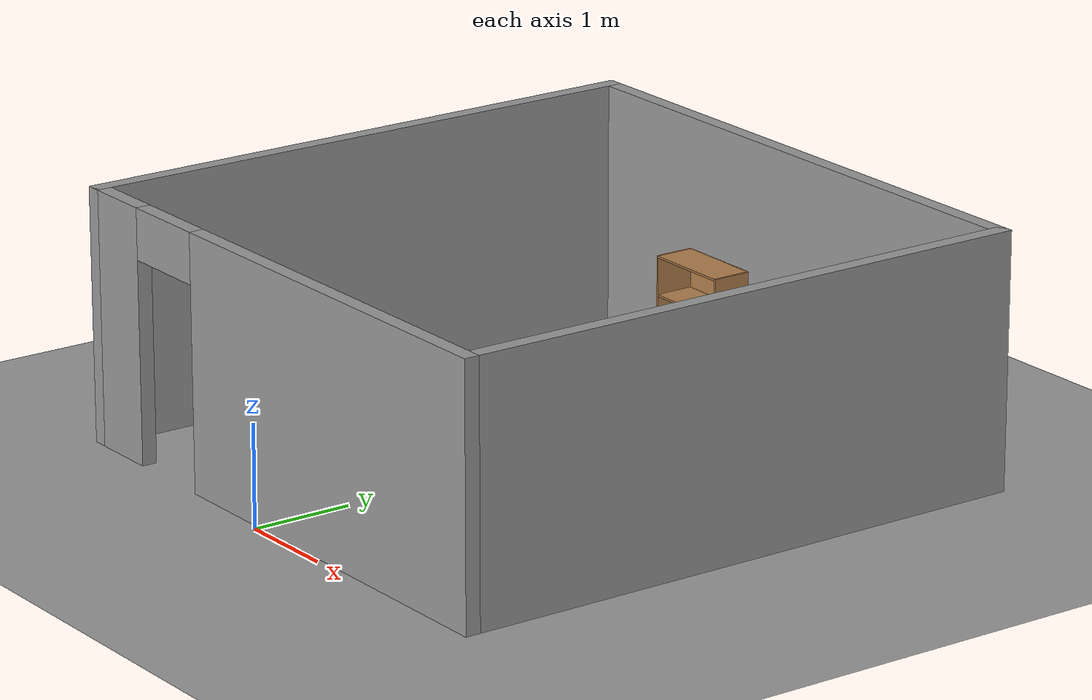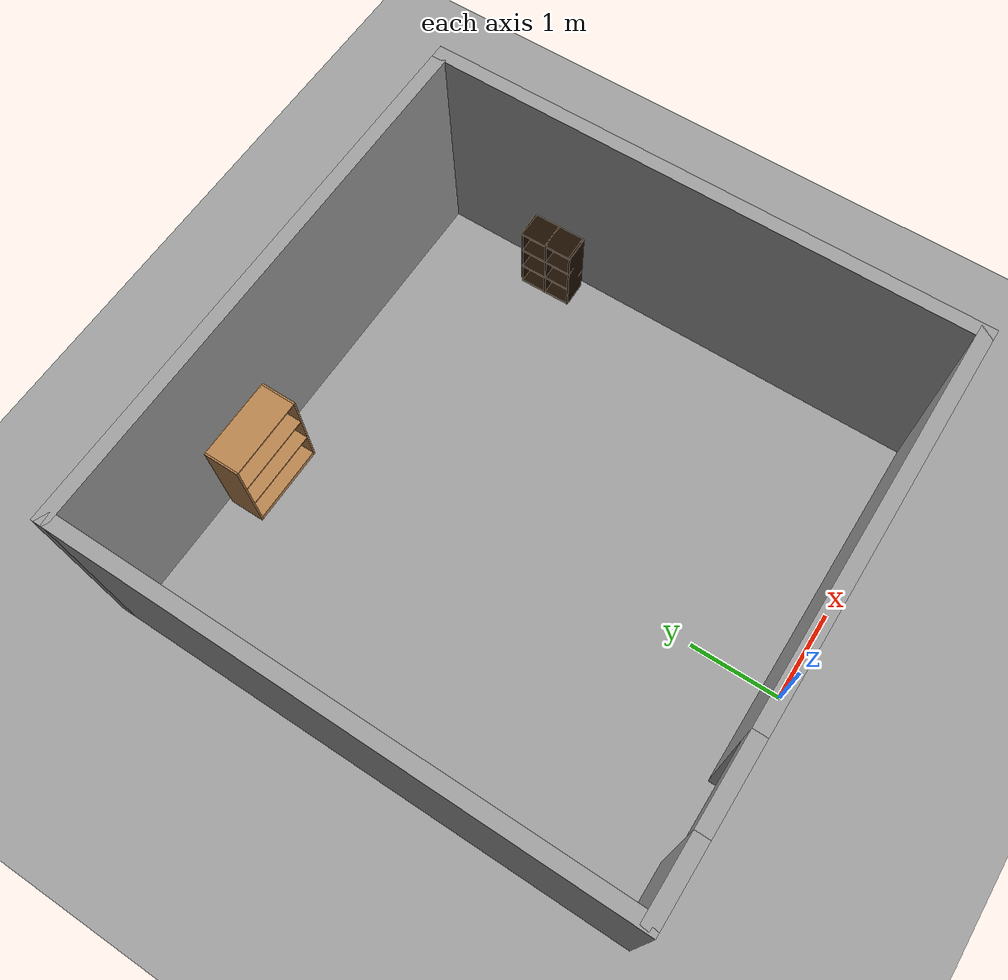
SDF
<sdf version="1.6">
 <world name="default">
  <light name="sun" type="directional">
   <pose>0 0 10 0 -0 0</pose>
   <diffuse>0.8 0.8 0.8 1</diffuse>
   <specular>0.2 0.2 0.2 1</specular>
   <attenuation>
    <range>1000</range>
    <constant>0.9</constant>
    <linear>0.01</linear>
    <quadratic>0.001</quadratic>
   </attenuation>
   <direction>0.5 0.1 -0.9</direction>
  </light>
  <scene><ambient>0.4 0.4 0.4 1</ambient><background>0.7 0.7 0.7 1</background><shadows>1</shadows></scene>
  <physics name="default_physics" default="0" type="ode">
   <max_step_size>0.01</max_step_size>
   <real_time_factor>1</real_time_factor>
   <real_time_update_rate>100</real_time_update_rate>
  </physics>
  <model name="bookshelf">
   <static>1</static>
   <link name="link">
    <inertial><mass>1</mass></inertial>
    <collision name="back">
     <pose>0 0.005 0.6 0 -0 0</pose>
     <geometry><box><size>0.9 0.01 1.2</size></box></geometry>
    </collision>
    <visual name="visual1">
     <pose>0 0.005 0.6 0 -0 0</pose>
     <geometry><box><size>0.9 0.01 1.2</size></box></geometry>
     <material>
      <script><uri>file://media/materials/scripts/gazebo.material</uri><name>Gazebo/Wood</name></script>
     </material>
    </visual>
    <collision name="left_side">
     <pose>0.45 -0.195 0.6 0 -0 0</pose>
     <geometry><box><size>0.02 0.4 1.2</size></box></geometry>
    </collision>
    <visual name="visual2">
     <pose>0.45 -0.195 0.6 0 -0 0</pose>
     <geometry><box><size>0.02 0.4 1.2</size></box></geometry>
     <material>
      <script><uri>file://media/materials/scripts/gazebo.material</uri><name>Gazebo/Wood</name></script>
     </material>
    </visual>
    <collision name="right_side">
     <pose>-0.45 -0.195 0.6 0 -0 0</pose>
     <geometry><box><size>0.02 0.4 1.2</size></box></geometry>
    </collision>
    <visual name="visual3">
     <pose>-0.45 -0.195 0.6 0 -0 0</pose>
     <geometry><box><size>0.02 0.4 1.2</size></box></geometry>
     <material>
      <script><uri>file://media/materials/scripts/gazebo.material</uri><name>Gazebo/Wood</name></script>
     </material>
    </visual>
    <collision name="bottom">
     <pose>0 -0.195 0.03 0 -0 0</pose>
     <geometry><box><size>0.88 0.4 0.06</size></box></geometry>
    </collision>
    <visual name="visual4">
     <pose>0 -0.195 0.03 0 -0 0</pose>
     <geometry><box><size>0.88 0.4 0.06</size></box></geometry>
     <material>
      <script><uri>file://media/materials/scripts/gazebo.material</uri><name>Gazebo/Wood</name></script>
     </material>
    </visual>
    <collision name="top">
     <pose>0 -0.195 1.19 0 -0 0</pose>
     <geometry><box><size>0.88 0.4 0.02</size></box></geometry>
    </collision>
    <visual name="visual5">
     <pose>0 -0.195 1.19 0 -0 0</pose>
     <geometry><box><size>0.88 0.4 0.02</size></box></geometry>
     <material>
      <script><uri>file://media/materials/scripts/gazebo.material</uri><name>Gazebo/Wood</name></script>
     </material>
    </visual>
    <collision name="low_shelf">
     <pose>0 -0.195 0.43 0 -0 0</pose>
     <geometry><box><size>0.88 0.4 0.02</size></box></geometry>
    </collision>
    <visual name="visual6">
     <pose>0 -0.195 0.43 0 -0 0</pose>
     <geometry><box><size>0.88 0.4 0.02</size></box></geometry>
     <material>
      <script><uri>file://media/materials/scripts/gazebo.material</uri><name>Gazebo/Wood</name></script>
     </material>
    </visual>
    <collision name="high_shelf">
     <pose>0 -0.195 0.8 0 -0 0</pose>
     <geometry><box><size>0.88 0.4 0.02</size></box></geometry>
    </collision>
    <visual name="visual7">
     <pose>0 -0.195 0.8 0 -0 0</pose>
     <geometry><box><size>0.88 0.4 0.02</size></box></geometry>
     <material>
      <script><uri>file://media/materials/scripts/gazebo.material</uri><name>Gazebo/Wood</name></script>
     </material>
    </visual>
    <velocity_decay><linear>0</linear><angular>0</angular></velocity_decay>
   </link>
   <pose>-0.805624 5.84828 0 0 -0 0</pose>
  </model>
  <model name="ground_plane_0">
   <static>1</static>
   <link name="link">
    <collision name="collision">
     <geometry><plane><normal>0 0 1</normal><size>100 100</size></plane></geometry>
     <surface><friction><ode><mu>100</mu><mu2>50</mu2></ode></friction></surface>
    </collision>
    <visual name="visual">
     <cast_shadows>0</cast_shadows>
     <geometry><plane><normal>0 0 1</normal><size>100 100</size></plane></geometry>
     <material>
      <script><uri>file://media/materials/scripts/gazebo.material</uri><name>Gazebo/Grey</name></script>
     </material>
    </visual>
    <velocity_decay><linear>0</linear><angular>0</angular></velocity_decay>
   </link>
   <pose>0.497681 0 0 0 -0 0</pose>
  </model>
  <gravity>0 0 -9.8</gravity>
  <magnetic_field>6e-06 2.3e-05 -4.2e-05</magnetic_field>
  <atmosphere type="adiabatic"/>
  <spherical_coordinates>
   <surface_model>EARTH_WGS84</surface_model>
   <latitude_deg>0</latitude_deg>
   <longitude_deg>0</longitude_deg>
   <elevation>0</elevation>
   <heading_deg>0</heading_deg>
  </spherical_coordinates>
  <model name="Untitled_0">
   <pose>0.205 3.045 0 0 -0 0</pose>
   <link name="Wall_15">
    <collision name="Wall_15_Collision">
     <geometry><box><size>6 0.15 2.5</size></box></geometry>
     <pose>0 0 1.25 0 -0 0</pose>
    </collision>
    <visual name="Wall_15_Visual">
     <pose>0 0 1.25 0 -0 0</pose>
     <geometry><box><size>6 0.15 2.5</size></box></geometry>
     <material>
      <script><uri>file://media/materials/scripts/gazebo.material</uri><name>Gazebo/Grey</name></script>
      <ambient>1 1 1 1</ambient>
     </material>
    </visual>
    <pose>-2.925 0 0 0 0 -1.5708</pose>
   </link>
   <link name="Wall_5">
    <collision name="Wall_5_Collision">
     <geometry><box><size>6 0.15 2.5</size></box></geometry>
     <pose>0 0 1.25 0 -0 0</pose>
    </collision>
    <visual name="Wall_5_Visual">
     <pose>0 0 1.25 0 -0 0</pose>
     <geometry><box><size>6 0.15 2.5</size></box></geometry>
     <material>
      <script><uri>file://media/materials/scripts/gazebo.material</uri><name>Gazebo/Grey</name></script>
      <ambient>1 1 1 1</ambient>
     </material>
    </visual>
    <pose>0 2.925 0 0 -0 3.14159</pose>
   </link>
   <link name="Wall_7">
    <collision name="Wall_7_Collision">
     <geometry><box><size>6 0.15 2.5</size></box></geometry>
     <pose>0 0 1.25 0 -0 0</pose>
    </collision>
    <visual name="Wall_7_Visual">
     <pose>0 0 1.25 0 -0 0</pose>
     <geometry><box><size>6 0.15 2.5</size></box></geometry>
     <material>
      <script><uri>file://media/materials/scripts/gazebo.material</uri><name>Gazebo/Grey</name></script>
      <ambient>1 1 1 1</ambient>
     </material>
    </visual>
    <pose>2.925 0 0 0 0 -1.5708</pose>
   </link>
   <link name="Wall_9">
    <pose>0 -2.925 0 0 -0 3.14159</pose>
    <visual name="Wall_9_Visual_0">
     <pose>-0.859255 0 1.25 0 -0 0</pose>
     <geometry><box><size>4.28149 0.15 2.5</size></box></geometry>
     <material>
      <script><uri>file://media/materials/scripts/gazebo.material</uri><name>Gazebo/Grey</name></script>
      <ambient>1 1 1 1</ambient>
     </material>
    </visual>
    <collision name="Wall_9_Collision_0">
     <geometry><box><size>4.28149 0.15 2.5</size></box></geometry>
     <pose>-0.859255 0 1.25 0 -0 0</pose>
    </collision>
    <visual name="Wall_9_Visual_1">
     <pose>2.59075 0 1.25 0 -0 0</pose>
     <geometry><box><size>0.81851 0.15 2.5</size></box></geometry>
     <material>
      <script><uri>file://media/materials/scripts/gazebo.material</uri><name>Gazebo/Grey</name></script>
      <ambient>1 1 1 1</ambient>
     </material>
    </visual>
    <collision name="Wall_9_Collision_1">
     <geometry><box><size>0.81851 0.15 2.5</size></box></geometry>
     <pose>2.59075 0 1.25 0 -0 0</pose>
    </collision>
    <visual name="Wall_9_Visual_2">
     <pose>1.73149 0 2.25 0 -0 0</pose>
     <geometry><box><size>0.9 0.15 0.5</size></box></geometry>
     <material>
      <script><uri>file://media/materials/scripts/gazebo.material</uri><name>Gazebo/Grey</name></script>
      <ambient>1 1 1 1</ambient>
     </material>
    </visual>
    <collision name="Wall_9_Collision_2">
     <geometry><box><size>0.9 0.15 0.5</size></box></geometry>
     <pose>1.73149 0 2.25 0 -0 0</pose>
    </collision>
   </link>
   <static>1</static>
  </model>
  <model name="6_Cube_StorageE">
   <link name="Wall_0">
    <pose>0 0 0.01 0 -0 0</pose>
    <inertial>
     <mass>1.6201</mass>
     <inertia><ixx>0.0119</ixx><iyy>0.0631</iyy><izz>0.0513</izz><ixy>0</ixy><ixz>0</ixz><iyz>0</iyz></inertia>
    </inertial>
    <collision name="Wall_0_Collision"><geometry><box><size>0.616 0.296 0.02</size></box></geometry></collision>
    <visual name="Wall_0_Visual">
     <geometry><box><size>0.616 0.296 0.02</size></box></geometry>
     <material>
      <script><uri>file://media/materials/scripts/gazebo.material</uri><name>Gazebo/Grey</name></script>
      <ambient>0.105882 0.0509804 0 1</ambient>
     </material>
    </visual>
   </link>
   <joint name="0_2" type="fixed">
    <pose>-0.308 0 0 0 -0 0</pose>
    <parent>Wall_2</parent>
    <child>Wall_0</child>
    <axis>
     <xyz>1 0 0</xyz>
     <use_parent_model_frame>0</use_parent_model_frame>
     <limit><lower>-1e+16</lower><upper>1e+16</upper></limit>
    </axis>
   </joint>
   <joint name="0_12" type="fixed">
    <parent>Wall_12</parent>
    <child>Wall_0</child>
    <axis>
     <xyz>0 0 1</xyz>
     <use_parent_model_frame>0</use_parent_model_frame>
     <limit><lower>-1e+16</lower><upper>1e+16</upper></limit>
    </axis>
   </joint>
   <joint name="0_4" type="fixed">
    <pose>0.308 0 0 0 -0 0</pose>
    <parent>Wall_4</parent>
    <child>Wall_0</child>
    <axis>
     <xyz>1 0 0</xyz>
     <use_parent_model_frame>0</use_parent_model_frame>
     <limit><lower>-1e+16</lower><upper>1e+16</upper></limit>
    </axis>
   </joint>
   <link name="Wall_10">
    <pose>0 0 0.61 0 -0 0</pose>
    <inertial>
     <mass>1.6201</mass>
     <inertia><ixx>0.0119</ixx><iyy>0.0631</iyy><izz>0.0513</izz><ixy>0</ixy><ixz>0</ixz><iyz>0</iyz></inertia>
    </inertial>
    <collision name="Wall_10_Collision"><geometry><box><size>0.616 0.296 0.02</size></box></geometry></collision>
    <visual name="Wall_10_Visual">
     <geometry><box><size>0.616 0.296 0.02</size></box></geometry>
     <material>
      <script><uri>file://media/materials/scripts/gazebo.material</uri><name>Gazebo/Grey</name></script>
      <ambient>0.105882 0.0509804 0 1</ambient>
     </material>
    </visual>
   </link>
   <joint name="10_2" type="fixed">
    <pose>-0.308 0 0 0 -0 0</pose>
    <parent>Wall_2</parent>
    <child>Wall_10</child>
    <axis>
     <xyz>1 0 0</xyz>
     <use_parent_model_frame>0</use_parent_model_frame>
     <limit><lower>-1e+16</lower><upper>1e+16</upper></limit>
    </axis>
   </joint>
   <joint name="10_12" type="fixed">
    <parent>Wall_12</parent>
    <child>Wall_10</child>
    <axis>
     <xyz>0 0 1</xyz>
     <use_parent_model_frame>0</use_parent_model_frame>
     <limit><lower>-1e+16</lower><upper>1e+16</upper></limit>
    </axis>
   </joint>
   <joint name="10_4" type="fixed">
    <pose>0.308 0 0 0 -0 0</pose>
    <parent>Wall_4</parent>
    <child>Wall_10</child>
    <axis>
     <xyz>1 0 0</xyz>
     <use_parent_model_frame>0</use_parent_model_frame>
     <limit><lower>-1e+16</lower><upper>1e+16</upper></limit>
    </axis>
   </joint>
   <link name="Wall_12">
    <pose>0 0 0.4575 0 -0 0</pose>
    <inertial>
     <mass>2.4065</mass>
     <inertia><ixx>0.0177</ixx><iyy>0.1855</iyy><izz>0.168</izz><ixy>0</ixy><ixz>0</ixz><iyz>0</iyz></inertia>
    </inertial>
    <collision name="Wall_12_Collision"><geometry><box><size>0.02 0.296 0.915</size></box></geometry></collision>
    <visual name="Wall_12_Visual">
     <geometry><box><size>0.02 0.296 0.915</size></box></geometry>
     <material>
      <script><uri>file://media/materials/scripts/gazebo.material</uri><name>Gazebo/Grey</name></script>
      <ambient>0.105882 0.0509804 0 1</ambient>
     </material>
    </visual>
   </link>
   <link name="Wall_2">
    <pose>-0.298 0 0.4575 0 -0 0</pose>
    <inertial>
     <mass>2.4065</mass>
     <inertia><ixx>0.0177</ixx><iyy>0.1855</iyy><izz>0.168</izz><ixy>0</ixy><ixz>0</ixz><iyz>0</iyz></inertia>
    </inertial>
    <collision name="Wall_2_Collision"><geometry><box><size>0.02 0.296 0.915</size></box></geometry></collision>
    <visual name="Wall_2_Visual">
     <geometry><box><size>0.02 0.296 0.915</size></box></geometry>
     <material>
      <script><uri>file://media/materials/scripts/gazebo.material</uri><name>Gazebo/Grey</name></script>
      <ambient>0.105882 0.0509804 0 1</ambient>
     </material>
    </visual>
   </link>
   <link name="Wall_4">
    <pose>0.298 0 0.4575 0 -0 0</pose>
    <inertial>
     <mass>2.4065</mass>
     <inertia><ixx>0.0177</ixx><iyy>0.1855</iyy><izz>0.168</izz><ixy>0</ixy><ixz>0</ixz><iyz>0</iyz></inertia>
    </inertial>
    <collision name="Wall_4_Collision"><geometry><box><size>0.02 0.296 0.915</size></box></geometry></collision>
    <visual name="Wall_4_Visual">
     <geometry><box><size>0.02 0.296 0.915</size></box></geometry>
     <material>
      <script><uri>file://media/materials/scripts/gazebo.material</uri><name>Gazebo/Grey</name></script>
      <ambient>0.105882 0.0509804 0 1</ambient>
     </material>
    </visual>
   </link>
   <link name="Wall_6">
    <pose>0 0 0.905 0 -0 0</pose>
    <inertial>
     <mass>1.6201</mass>
     <inertia><ixx>0.0119</ixx><iyy>0.0631</iyy><izz>0.0513</izz><ixy>0</ixy><ixz>0</ixz><iyz>0</iyz></inertia>
    </inertial>
    <collision name="Wall_6_Collision"><geometry><box><size>0.616 0.296 0.02</size></box></geometry></collision>
    <visual name="Wall_6_Visual">
     <geometry><box><size>0.616 0.296 0.02</size></box></geometry>
     <material>
      <script><uri>file://media/materials/scripts/gazebo.material</uri><name>Gazebo/Grey</name></script>
      <ambient>0.105882 0.0509804 0 1</ambient>
     </material>
    </visual>
   </link>
   <joint name="6_2" type="fixed">
    <pose>-0.308 0 0 0 -0 0</pose>
    <parent>Wall_2</parent>
    <child>Wall_6</child>
    <axis>
     <xyz>2 0 0</xyz>
     <use_parent_model_frame>0</use_parent_model_frame>
     <limit><lower>-1e+16</lower><upper>1e+16</upper></limit>
    </axis>
   </joint>
   <joint name="6_12" type="fixed">
    <parent>Wall_12</parent>
    <child>Wall_6</child>
    <axis>
     <xyz>0 0 1</xyz>
     <use_parent_model_frame>0</use_parent_model_frame>
     <limit><lower>-1e+16</lower><upper>1e+16</upper></limit>
    </axis>
   </joint>
   <joint name="6_4" type="fixed">
    <pose>0.308 0 0 0 -0 0</pose>
    <parent>Wall_4</parent>
    <child>Wall_6</child>
    <axis>
     <xyz>1 0 0</xyz>
     <use_parent_model_frame>0</use_parent_model_frame>
     <limit><lower>-1e+16</lower><upper>1e+16</upper></limit>
    </axis>
   </joint>
   <link name="Wall_8">
    <pose>0 0 0.305 0 -0 0</pose>
    <inertial>
     <mass>1.6201</mass>
     <inertia><ixx>0.0119</ixx><iyy>0.0631</iyy><izz>0.0513</izz><ixy>0</ixy><ixz>0</ixz><iyz>0</iyz></inertia>
    </inertial>
    <collision name="Wall_8_Collision"><geometry><box><size>0.616 0.296 0.02</size></box></geometry></collision>
    <visual name="Wall_8_Visual">
     <geometry><box><size>0.616 0.296 0.02</size></box></geometry>
     <material>
      <script><uri>file://media/materials/scripts/gazebo.material</uri><name>Gazebo/Grey</name></script>
      <ambient>0.105882 0.0509804 0 1</ambient>
     </material>
    </visual>
   </link>
   <joint name="8_2" type="fixed">
    <pose>-0.308 0 0 0 -0 0</pose>
    <parent>Wall_2</parent>
    <child>Wall_8</child>
    <axis>
     <xyz>1 0 0</xyz>
     <use_parent_model_frame>0</use_parent_model_frame>
     <limit><lower>-1e+16</lower><upper>1e+16</upper></limit>
    </axis>
   </joint>
   <joint name="8_12" type="fixed">
    <parent>Wall_12</parent>
    <child>Wall_8</child>
    <axis>
     <xyz>0 0 1</xyz>
     <use_parent_model_frame>0</use_parent_model_frame>
     <limit><lower>-1e+16</lower><upper>1e+16</upper></limit>
    </axis>
   </joint>
   <joint name="8_4" type="fixed">
    <pose>0.308 0 0 0 -0 0</pose>
    <parent>Wall_4</parent>
    <child>Wall_8</child>
    <axis>
     <xyz>1 0 0</xyz>
     <use_parent_model_frame>0</use_parent_model_frame>
     <limit><lower>-1e+16</lower><upper>1e+16</upper></limit>
    </axis>
   </joint>
   <static>1</static>
   <pose>2.84194 4.46788 0 0 0 -1.55858</pose>
  </model>
 </world>
</sdf>
